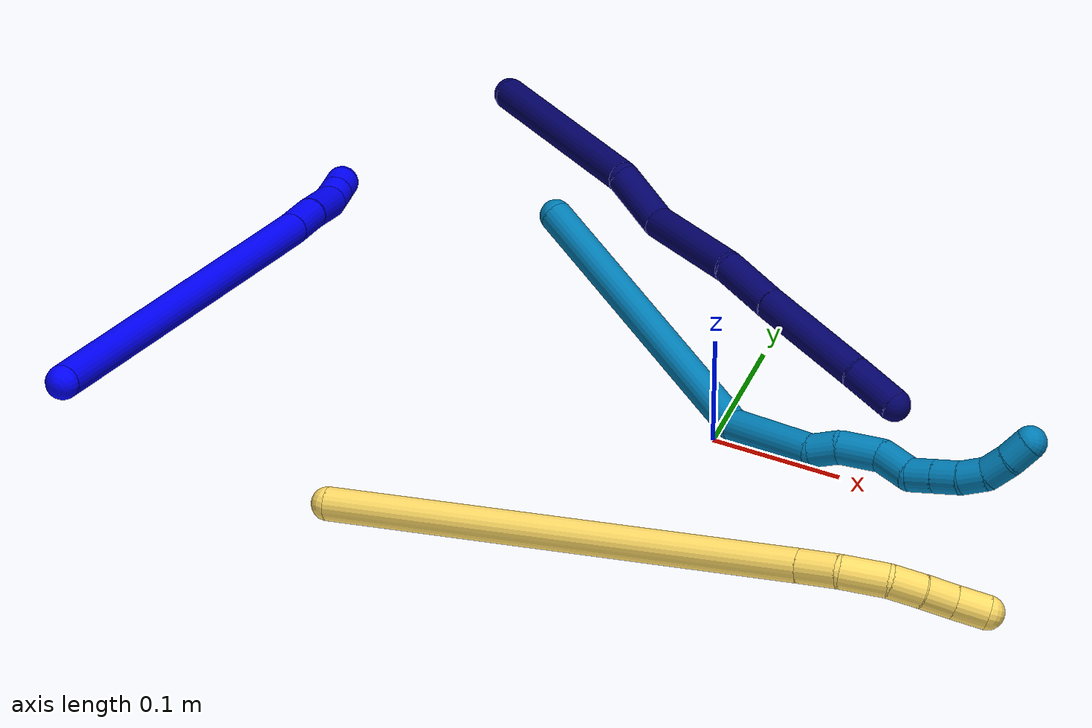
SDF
<sdf version="1.7">
 <world name="default">
  <model name="1">
   <static>0</static>
   <link name="1">
    <collision name="collision-cylinder-e_1_1_4">
     <pose>-0.01141 0.01002 -0.184015 -3.08719 -0.061836 1.69867</pose>
     <geometry><cylinder><radius>0.0125</radius><length>0.36928</length></cylinder></geometry>
     <surface>
      <friction><ode><mu>1.16</mu><mu2>1.16</mu2><slip1>0</slip1><slip2>0</slip2></ode></friction>
      <contact><ode><kp>1e+06</kp><kd>1</kd><max_vel>0</max_vel><min_depth>0.001</min_depth></ode></contact>
     </surface>
    </collision>
    <visual name="visual-cylinder-e_1_1_4">
     <pose>-0.01141 0.01002 -0.184015 -3.08719 -0.061836 1.69867</pose>
     <geometry><cylinder><radius>0.0125</radius><length>0.36928</length></cylinder></geometry>
     <material><ambient>0 0 1 1</ambient></material>
    </visual>
    <collision name="collision-cylinder-e_2_4_5">
     <pose>-0.022898 0.020659 -0.38692 -3.10885 -0.004103 0.249349</pose>
     <geometry><cylinder><radius>0.0125</radius><length>0.037802</length></cylinder></geometry>
     <surface>
      <friction><ode><mu>1.16</mu><mu2>1.16</mu2><slip1>0</slip1><slip2>0</slip2></ode></friction>
      <contact><ode><kp>1e+06</kp><kd>1</kd><max_vel>0</max_vel><min_depth>0.001</min_depth></ode></contact>
     </surface>
    </collision>
    <visual name="visual-cylinder-e_2_4_5">
     <pose>-0.022898 0.020659 -0.38692 -3.10885 -0.004103 0.249349</pose>
     <geometry><cylinder><radius>0.0125</radius><length>0.037802</length></cylinder></geometry>
     <material><ambient>0 0 1 1</ambient></material>
    </visual>
    <collision name="collision-cylinder-e_3_5_6">
     <pose>-0.020121 0.025031 -0.43169 -2.99754 0.108734 -1.29242</pose>
     <geometry><cylinder><radius>0.0125</radius><length>0.052611</length></cylinder></geometry>
     <surface>
      <friction><ode><mu>1.16</mu><mu2>1.16</mu2><slip1>0</slip1><slip2>0</slip2></ode></friction>
      <contact><ode><kp>1e+06</kp><kd>1</kd><max_vel>0</max_vel><min_depth>0.001</min_depth></ode></contact>
     </surface>
    </collision>
    <visual name="visual-cylinder-e_3_5_6">
     <pose>-0.020121 0.025031 -0.43169 -2.99754 0.108734 -1.29242</pose>
     <geometry><cylinder><radius>0.0125</radius><length>0.052611</length></cylinder></geometry>
     <material><ambient>0 0 1 1</ambient></material>
    </visual>
    <collision name="collision-cylinder-e_4_6_7">
     <pose>-0.016154 0.028257 -0.467604 3.08901 0.110196 2.25176</pose>
     <geometry><cylinder><radius>0.0125</radius><length>0.02022</length></cylinder></geometry>
     <surface>
      <friction><ode><mu>1.16</mu><mu2>1.16</mu2><slip1>0</slip1><slip2>0</slip2></ode></friction>
      <contact><ode><kp>1e+06</kp><kd>1</kd><max_vel>0</max_vel><min_depth>0.001</min_depth></ode></contact>
     </surface>
    </collision>
    <visual name="visual-cylinder-e_4_6_7">
     <pose>-0.016154 0.028257 -0.467604 3.08901 0.110196 2.25176</pose>
     <geometry><cylinder><radius>0.0125</radius><length>0.02022</length></cylinder></geometry>
     <material><ambient>0 0 1 1</ambient></material>
    </visual>
    <collision name="collision-cylinder-e_5_7_2">
     <pose>-0.01394 0.027205 -0.487608 3.0891 0.109984 2.25162</pose>
     <geometry><cylinder><radius>0.0125</radius><length>0.020086</length></cylinder></geometry>
     <surface>
      <friction><ode><mu>1.16</mu><mu2>1.16</mu2><slip1>0</slip1><slip2>0</slip2></ode></friction>
      <contact><ode><kp>1e+06</kp><kd>1</kd><max_vel>0</max_vel><min_depth>0.001</min_depth></ode></contact>
     </surface>
    </collision>
    <visual name="visual-cylinder-e_5_7_2">
     <pose>-0.01394 0.027205 -0.487608 3.0891 0.109984 2.25162</pose>
     <geometry><cylinder><radius>0.0125</radius><length>0.020086</length></cylinder></geometry>
     <material><ambient>0 0 1 1</ambient></material>
    </visual>
    <collision name="collision-sphere-2">
     <pose>-0.012838 0.026682 -0.497577 0 -0 0</pose>
     <geometry><sphere><radius>0.0125</radius></sphere></geometry>
     <surface>
      <friction><ode><mu>1.16</mu><mu2>1.16</mu2><slip1>0</slip1><slip2>0</slip2></ode></friction>
      <contact><ode><kp>1e+06</kp><kd>1</kd><max_vel>0</max_vel><min_depth>0.001</min_depth></ode></contact>
     </surface>
    </collision>
    <visual name="visual-sphere-2">
     <pose>-0.012838 0.026682 -0.497577 0 -0 0</pose>
     <geometry><sphere><radius>0.0125</radius></sphere></geometry>
     <material><ambient>0 0 1 1</ambient></material>
    </visual>
    <collision name="collision-sphere-7">
     <pose>-0.015043 0.027729 -0.477639 0 -0 0</pose>
     <geometry><sphere><radius>0.0125</radius></sphere></geometry>
     <surface>
      <friction><ode><mu>1.16</mu><mu2>1.16</mu2><slip1>0</slip1><slip2>0</slip2></ode></friction>
      <contact><ode><kp>1e+06</kp><kd>1</kd><max_vel>0</max_vel><min_depth>0.001</min_depth></ode></contact>
     </surface>
    </collision>
    <visual name="visual-sphere-7">
     <pose>-0.015043 0.027729 -0.477639 0 -0 0</pose>
     <geometry><sphere><radius>0.0125</radius></sphere></geometry>
     <material><ambient>0 0 1 1</ambient></material>
    </visual>
    <collision name="collision-sphere-6">
     <pose>-0.017266 0.028786 -0.457569 0 -0 0</pose>
     <geometry><sphere><radius>0.0125</radius></sphere></geometry>
     <surface>
      <friction><ode><mu>1.16</mu><mu2>1.16</mu2><slip1>0</slip1><slip2>0</slip2></ode></friction>
      <contact><ode><kp>1e+06</kp><kd>1</kd><max_vel>0</max_vel><min_depth>0.001</min_depth></ode></contact>
     </surface>
    </collision>
    <visual name="visual-sphere-6">
     <pose>-0.017266 0.028786 -0.457569 0 -0 0</pose>
     <geometry><sphere><radius>0.0125</radius></sphere></geometry>
     <material><ambient>0 0 1 1</ambient></material>
    </visual>
    <collision name="collision-sphere-5">
     <pose>-0.022976 0.021277 -0.405811 0 -0 0</pose>
     <geometry><sphere><radius>0.0125</radius></sphere></geometry>
     <surface>
      <friction><ode><mu>1.16</mu><mu2>1.16</mu2><slip1>0</slip1><slip2>0</slip2></ode></friction>
      <contact><ode><kp>1e+06</kp><kd>1</kd><max_vel>0</max_vel><min_depth>0.001</min_depth></ode></contact>
     </surface>
    </collision>
    <visual name="visual-sphere-5">
     <pose>-0.022976 0.021277 -0.405811 0 -0 0</pose>
     <geometry><sphere><radius>0.0125</radius></sphere></geometry>
     <material><ambient>0 0 1 1</ambient></material>
    </visual>
    <collision name="collision-sphere-1">
     <geometry><sphere><radius>0.0125</radius></sphere></geometry>
     <surface>
      <friction><ode><mu>1.16</mu><mu2>1.16</mu2><slip1>0</slip1><slip2>0</slip2></ode></friction>
      <contact><ode><kp>1e+06</kp><kd>1</kd><max_vel>0</max_vel><min_depth>0.001</min_depth></ode></contact>
     </surface>
    </collision>
    <visual name="visual-sphere-1">
     <geometry><sphere><radius>0.0125</radius></sphere></geometry>
     <material><ambient>0 0 1 1</ambient></material>
    </visual>
    <collision name="collision-sphere-4">
     <pose>-0.02282 0.02004 -0.368029 0 -0 0</pose>
     <geometry><sphere><radius>0.0125</radius></sphere></geometry>
     <surface>
      <friction><ode><mu>1.16</mu><mu2>1.16</mu2><slip1>0</slip1><slip2>0</slip2></ode></friction>
      <contact><ode><kp>1e+06</kp><kd>1</kd><max_vel>0</max_vel><min_depth>0.001</min_depth></ode></contact>
     </surface>
    </collision>
    <visual name="visual-sphere-4">
     <pose>-0.02282 0.02004 -0.368029 0 -0 0</pose>
     <geometry><sphere><radius>0.0125</radius></sphere></geometry>
     <material><ambient>0 0 1 1</ambient></material>
    </visual>
    <inertial>
     <pose>-0.013489 0.013832 -0.249081 0 -0 0</pose>
     <mass>0.5</mass>
     <inertia>
      <ixx>0.00363</ixx>
      <ixy>0</ixy>
      <ixz>0</ixz>
      <iyy>0.004704</iyy>
      <iyz>0</iyz>
      <izz>-1.1e-05</izz>
     </inertia>
    </inertial>
   </link>
   <pose>-0.348567 -0.34777 0.232292 -1.19494 0.306892 -2.96818</pose>
  </model>
  <model name="5">
   <static>0</static>
   <link name="5">
    <collision name="collision-cylinder-e_1_1_4">
     <pose>0.13888 0.110654 0.027861 -1.32414 0.883008 -0.705895</pose>
     <geometry><cylinder><radius>0.0125</radius><length>0.35949</length></cylinder></geometry>
     <surface>
      <friction><ode><mu>1.16</mu><mu2>1.16</mu2><slip1>0</slip1><slip2>0</slip2></ode></friction>
      <contact><ode><kp>1e+06</kp><kd>1</kd><max_vel>0</max_vel><min_depth>0.001</min_depth></ode></contact>
     </surface>
    </collision>
    <visual name="visual-cylinder-e_1_1_4">
     <pose>0.13888 0.110654 0.027861 -1.32414 0.883008 -0.705895</pose>
     <geometry><cylinder><radius>0.0125</radius><length>0.35949</length></cylinder></geometry>
     <material><ambient>1 0.858824 0.4 1</ambient></material>
    </visual>
    <collision name="collision-cylinder-e_2_4_5">
     <pose>0.289494 0.230346 0.057896 -1.33472 0.900779 -0.728055</pose>
     <geometry><cylinder><radius>0.0125</radius><length>0.02994</length></cylinder></geometry>
     <surface>
      <friction><ode><mu>1.16</mu><mu2>1.16</mu2><slip1>0</slip1><slip2>0</slip2></ode></friction>
      <contact><ode><kp>1e+06</kp><kd>1</kd><max_vel>0</max_vel><min_depth>0.001</min_depth></ode></contact>
     </surface>
    </collision>
    <visual name="visual-cylinder-e_2_4_5">
     <pose>0.289494 0.230346 0.057896 -1.33472 0.900779 -0.728055</pose>
     <geometry><cylinder><radius>0.0125</radius><length>0.02994</length></cylinder></geometry>
     <material><ambient>1 0.858824 0.4 1</ambient></material>
    </visual>
    <collision name="collision-cylinder-e_3_5_6">
     <pose>0.31136 0.253635 0.0618 -1.45 0.614652 -0.548213</pose>
     <geometry><cylinder><radius>0.0125</radius><length>0.035141</length></cylinder></geometry>
     <surface>
      <friction><ode><mu>1.16</mu><mu2>1.16</mu2><slip1>0</slip1><slip2>0</slip2></ode></friction>
      <contact><ode><kp>1e+06</kp><kd>1</kd><max_vel>0</max_vel><min_depth>0.001</min_depth></ode></contact>
     </surface>
    </collision>
    <visual name="visual-cylinder-e_3_5_6">
     <pose>0.31136 0.253635 0.0618 -1.45 0.614652 -0.548213</pose>
     <geometry><cylinder><radius>0.0125</radius><length>0.035141</length></cylinder></geometry>
     <material><ambient>1 0.858824 0.4 1</ambient></material>
    </visual>
    <collision name="collision-cylinder-e_4_6_7">
     <pose>0.325989 0.279838 0.063253 -1.59394 0.359698 -0.367934</pose>
     <geometry><cylinder><radius>0.0125</radius><length>0.025546</length></cylinder></geometry>
     <surface>
      <friction><ode><mu>1.16</mu><mu2>1.16</mu2><slip1>0</slip1><slip2>0</slip2></ode></friction>
      <contact><ode><kp>1e+06</kp><kd>1</kd><max_vel>0</max_vel><min_depth>0.001</min_depth></ode></contact>
     </surface>
    </collision>
    <visual name="visual-cylinder-e_4_6_7">
     <pose>0.325989 0.279838 0.063253 -1.59394 0.359698 -0.367934</pose>
     <geometry><cylinder><radius>0.0125</radius><length>0.025546</length></cylinder></geometry>
     <material><ambient>1 0.858824 0.4 1</ambient></material>
    </visual>
    <collision name="collision-cylinder-e_5_7_8">
     <pose>0.333665 0.303575 0.062404 -1.61935 0.263262 -0.276202</pose>
     <geometry><cylinder><radius>0.0125</radius><length>0.024439</length></cylinder></geometry>
     <surface>
      <friction><ode><mu>1.16</mu><mu2>1.16</mu2><slip1>0</slip1><slip2>0</slip2></ode></friction>
      <contact><ode><kp>1e+06</kp><kd>1</kd><max_vel>0</max_vel><min_depth>0.001</min_depth></ode></contact>
     </surface>
    </collision>
    <visual name="visual-cylinder-e_5_7_8">
     <pose>0.333665 0.303575 0.062404 -1.61935 0.263262 -0.276202</pose>
     <geometry><cylinder><radius>0.0125</radius><length>0.024439</length></cylinder></geometry>
     <material><ambient>1 0.858824 0.4 1</ambient></material>
    </visual>
    <collision name="collision-cylinder-e_6_8_2">
     <pose>0.342456 0.326773 0.061524 -1.59769 0.456807 -0.468814</pose>
     <geometry><cylinder><radius>0.0125</radius><length>0.025444</length></cylinder></geometry>
     <surface>
      <friction><ode><mu>1.16</mu><mu2>1.16</mu2><slip1>0</slip1><slip2>0</slip2></ode></friction>
      <contact><ode><kp>1e+06</kp><kd>1</kd><max_vel>0</max_vel><min_depth>0.001</min_depth></ode></contact>
     </surface>
    </collision>
    <visual name="visual-cylinder-e_6_8_2">
     <pose>0.342456 0.326773 0.061524 -1.59769 0.456807 -0.468814</pose>
     <geometry><cylinder><radius>0.0125</radius><length>0.025444</length></cylinder></geometry>
     <material><ambient>1 0.858824 0.4 1</ambient></material>
    </visual>
    <collision name="collision-sphere-2">
     <pose>0.348068 0.338186 0.061217 0 -0 0</pose>
     <geometry><sphere><radius>0.0125</radius></sphere></geometry>
     <surface>
      <friction><ode><mu>1.16</mu><mu2>1.16</mu2><slip1>0</slip1><slip2>0</slip2></ode></friction>
      <contact><ode><kp>1e+06</kp><kd>1</kd><max_vel>0</max_vel><min_depth>0.001</min_depth></ode></contact>
     </surface>
    </collision>
    <visual name="visual-sphere-2">
     <pose>0.348068 0.338186 0.061217 0 -0 0</pose>
     <geometry><sphere><radius>0.0125</radius></sphere></geometry>
     <material><ambient>1 0.858824 0.4 1</ambient></material>
    </visual>
    <collision name="collision-sphere-4">
     <pose>0.277761 0.221308 0.055721 0 -0 0</pose>
     <geometry><sphere><radius>0.0125</radius></sphere></geometry>
     <surface>
      <friction><ode><mu>1.16</mu><mu2>1.16</mu2><slip1>0</slip1><slip2>0</slip2></ode></friction>
      <contact><ode><kp>1e+06</kp><kd>1</kd><max_vel>0</max_vel><min_depth>0.001</min_depth></ode></contact>
     </surface>
    </collision>
    <visual name="visual-sphere-4">
     <pose>0.277761 0.221308 0.055721 0 -0 0</pose>
     <geometry><sphere><radius>0.0125</radius></sphere></geometry>
     <material><ambient>1 0.858824 0.4 1</ambient></material>
    </visual>
    <collision name="collision-sphere-1">
     <geometry><sphere><radius>0.0125</radius></sphere></geometry>
     <surface>
      <friction><ode><mu>1.16</mu><mu2>1.16</mu2><slip1>0</slip1><slip2>0</slip2></ode></friction>
      <contact><ode><kp>1e+06</kp><kd>1</kd><max_vel>0</max_vel><min_depth>0.001</min_depth></ode></contact>
     </surface>
    </collision>
    <visual name="visual-sphere-1">
     <geometry><sphere><radius>0.0125</radius></sphere></geometry>
     <material><ambient>1 0.858824 0.4 1</ambient></material>
    </visual>
    <collision name="collision-sphere-8">
     <pose>0.336845 0.315359 0.061831 0 -0 0</pose>
     <geometry><sphere><radius>0.0125</radius></sphere></geometry>
     <surface>
      <friction><ode><mu>1.16</mu><mu2>1.16</mu2><slip1>0</slip1><slip2>0</slip2></ode></friction>
      <contact><ode><kp>1e+06</kp><kd>1</kd><max_vel>0</max_vel><min_depth>0.001</min_depth></ode></contact>
     </surface>
    </collision>
    <visual name="visual-sphere-8">
     <pose>0.336845 0.315359 0.061831 0 -0 0</pose>
     <geometry><sphere><radius>0.0125</radius></sphere></geometry>
     <material><ambient>1 0.858824 0.4 1</ambient></material>
    </visual>
    <collision name="collision-sphere-5">
     <pose>0.301228 0.239385 0.06007 0 -0 0</pose>
     <geometry><sphere><radius>0.0125</radius></sphere></geometry>
     <surface>
      <friction><ode><mu>1.16</mu><mu2>1.16</mu2><slip1>0</slip1><slip2>0</slip2></ode></friction>
      <contact><ode><kp>1e+06</kp><kd>1</kd><max_vel>0</max_vel><min_depth>0.001</min_depth></ode></contact>
     </surface>
    </collision>
    <visual name="visual-sphere-5">
     <pose>0.301228 0.239385 0.06007 0 -0 0</pose>
     <geometry><sphere><radius>0.0125</radius></sphere></geometry>
     <material><ambient>1 0.858824 0.4 1</ambient></material>
    </visual>
    <collision name="collision-sphere-6">
     <pose>0.321493 0.267885 0.06353 0 -0 0</pose>
     <geometry><sphere><radius>0.0125</radius></sphere></geometry>
     <surface>
      <friction><ode><mu>1.16</mu><mu2>1.16</mu2><slip1>0</slip1><slip2>0</slip2></ode></friction>
      <contact><ode><kp>1e+06</kp><kd>1</kd><max_vel>0</max_vel><min_depth>0.001</min_depth></ode></contact>
     </surface>
    </collision>
    <visual name="visual-sphere-6">
     <pose>0.321493 0.267885 0.06353 0 -0 0</pose>
     <geometry><sphere><radius>0.0125</radius></sphere></geometry>
     <material><ambient>1 0.858824 0.4 1</ambient></material>
    </visual>
    <collision name="collision-sphere-7">
     <pose>0.330485 0.29179 0.062976 0 -0 0</pose>
     <geometry><sphere><radius>0.0125</radius></sphere></geometry>
     <surface>
      <friction><ode><mu>1.16</mu><mu2>1.16</mu2><slip1>0</slip1><slip2>0</slip2></ode></friction>
      <contact><ode><kp>1e+06</kp><kd>1</kd><max_vel>0</max_vel><min_depth>0.001</min_depth></ode></contact>
     </surface>
    </collision>
    <visual name="visual-sphere-7">
     <pose>0.330485 0.29179 0.062976 0 -0 0</pose>
     <geometry><sphere><radius>0.0125</radius></sphere></geometry>
     <material><ambient>1 0.858824 0.4 1</ambient></material>
    </visual>
    <inertial>
     <pose>0.189461 0.156941 0.037254 0 -0 0</pose>
     <mass>0.5</mass>
     <inertia>
      <ixx>0.000309</ixx>
      <ixy>0</ixy>
      <ixz>0</ixz>
      <iyy>0.001036</iyy>
      <iyz>0</iyz>
      <izz>-0.00541</izz>
     </inertia>
    </inertial>
   </link>
   <pose>-0.215235 -0.210737 0.041048 -0.644907 -0.498867 -0.562057</pose>
  </model>
  <model name="7">
   <static>0</static>
   <link name="7">
    <collision name="collision-cylinder-e_1_1_4">
     <pose>0.025119 -0.023645 -0.080065 2.85443 0.292264 1.58866</pose>
     <geometry><cylinder><radius>0.0125</radius><length>0.174362</length></cylinder></geometry>
     <surface>
      <friction><ode><mu>1.16</mu><mu2>1.16</mu2><slip1>0</slip1><slip2>0</slip2></ode></friction>
      <contact><ode><kp>1e+06</kp><kd>1</kd><max_vel>0</max_vel><min_depth>0.001</min_depth></ode></contact>
     </surface>
    </collision>
    <visual name="visual-cylinder-e_1_1_4">
     <pose>0.025119 -0.023645 -0.080065 2.85443 0.292264 1.58866</pose>
     <geometry><cylinder><radius>0.0125</radius><length>0.174362</length></cylinder></geometry>
     <material><ambient>0.003922 0 0.403922 1</ambient></material>
    </visual>
    <collision name="collision-cylinder-e_2_4_5">
     <pose>0.064005 -0.044599 -0.179605 -3.00424 0.610926 -2.71206</pose>
     <geometry><cylinder><radius>0.0125</radius><length>0.048003</length></cylinder></geometry>
     <surface>
      <friction><ode><mu>1.16</mu><mu2>1.16</mu2><slip1>0</slip1><slip2>0</slip2></ode></friction>
      <contact><ode><kp>1e+06</kp><kd>1</kd><max_vel>0</max_vel><min_depth>0.001</min_depth></ode></contact>
     </surface>
    </collision>
    <visual name="visual-cylinder-e_2_4_5">
     <pose>0.064005 -0.044599 -0.179605 -3.00424 0.610926 -2.71206</pose>
     <geometry><cylinder><radius>0.0125</radius><length>0.048003</length></cylinder></geometry>
     <material><ambient>0.003922 0 0.403922 1</ambient></material>
    </visual>
    <collision name="collision-cylinder-e_3_5_6">
     <pose>0.092471 -0.056694 -0.242565 2.81381 0.309714 1.51315</pose>
     <geometry><cylinder><radius>0.0125</radius><length>0.096449</length></cylinder></geometry>
     <surface>
      <friction><ode><mu>1.16</mu><mu2>1.16</mu2><slip1>0</slip1><slip2>0</slip2></ode></friction>
      <contact><ode><kp>1e+06</kp><kd>1</kd><max_vel>0</max_vel><min_depth>0.001</min_depth></ode></contact>
     </surface>
    </collision>
    <visual name="visual-cylinder-e_3_5_6">
     <pose>0.092471 -0.056694 -0.242565 2.81381 0.309714 1.51315</pose>
     <geometry><cylinder><radius>0.0125</radius><length>0.096449</length></cylinder></geometry>
     <material><ambient>0.003922 0 0.403922 1</ambient></material>
    </visual>
    <collision name="collision-cylinder-e_4_6_7">
     <pose>0.119678 -0.073975 -0.30657 3.02063 0.54416 2.71414</pose>
     <geometry><cylinder><radius>0.0125</radius><length>0.048322</length></cylinder></geometry>
     <surface>
      <friction><ode><mu>1.16</mu><mu2>1.16</mu2><slip1>0</slip1><slip2>0</slip2></ode></friction>
      <contact><ode><kp>1e+06</kp><kd>1</kd><max_vel>0</max_vel><min_depth>0.001</min_depth></ode></contact>
     </surface>
    </collision>
    <visual name="visual-cylinder-e_4_6_7">
     <pose>0.119678 -0.073975 -0.30657 3.02063 0.54416 2.71414</pose>
     <geometry><cylinder><radius>0.0125</radius><length>0.048322</length></cylinder></geometry>
     <material><ambient>0.003922 0 0.403922 1</ambient></material>
    </visual>
    <collision name="collision-cylinder-e_5_7_8">
     <pose>0.158421 -0.081542 -0.364838 3.00801 0.603181 2.71799</pose>
     <geometry><cylinder><radius>0.0125</radius><length>0.092497</length></cylinder></geometry>
     <surface>
      <friction><ode><mu>1.16</mu><mu2>1.16</mu2><slip1>0</slip1><slip2>0</slip2></ode></friction>
      <contact><ode><kp>1e+06</kp><kd>1</kd><max_vel>0</max_vel><min_depth>0.001</min_depth></ode></contact>
     </surface>
    </collision>
    <visual name="visual-cylinder-e_5_7_8">
     <pose>0.158421 -0.081542 -0.364838 3.00801 0.603181 2.71799</pose>
     <geometry><cylinder><radius>0.0125</radius><length>0.092497</length></cylinder></geometry>
     <material><ambient>0.003922 0 0.403922 1</ambient></material>
    </visual>
    <collision name="collision-cylinder-e_6_8_2">
     <pose>0.197966 -0.087416 -0.417739 3.08878 0.720041 3.0015</pose>
     <geometry><cylinder><radius>0.0125</radius><length>0.040367</length></cylinder></geometry>
     <surface>
      <friction><ode><mu>1.16</mu><mu2>1.16</mu2><slip1>0</slip1><slip2>0</slip2></ode></friction>
      <contact><ode><kp>1e+06</kp><kd>1</kd><max_vel>0</max_vel><min_depth>0.001</min_depth></ode></contact>
     </surface>
    </collision>
    <visual name="visual-cylinder-e_6_8_2">
     <pose>0.197966 -0.087416 -0.417739 3.08878 0.720041 3.0015</pose>
     <geometry><cylinder><radius>0.0125</radius><length>0.040367</length></cylinder></geometry>
     <material><ambient>0.003922 0 0.403922 1</ambient></material>
    </visual>
    <collision name="collision-sphere-2">
     <pose>0.211275 -0.088217 -0.432891 0 -0 0</pose>
     <geometry><sphere><radius>0.0125</radius></sphere></geometry>
     <surface>
      <friction><ode><mu>1.16</mu><mu2>1.16</mu2><slip1>0</slip1><slip2>0</slip2></ode></friction>
      <contact><ode><kp>1e+06</kp><kd>1</kd><max_vel>0</max_vel><min_depth>0.001</min_depth></ode></contact>
     </surface>
    </collision>
    <visual name="visual-sphere-2">
     <pose>0.211275 -0.088217 -0.432891 0 -0 0</pose>
     <geometry><sphere><radius>0.0125</radius></sphere></geometry>
     <material><ambient>0.003922 0 0.403922 1</ambient></material>
    </visual>
    <collision name="collision-sphere-4">
     <pose>0.050237 -0.04729 -0.16013 0 -0 0</pose>
     <geometry><sphere><radius>0.0125</radius></sphere></geometry>
     <surface>
      <friction><ode><mu>1.16</mu><mu2>1.16</mu2><slip1>0</slip1><slip2>0</slip2></ode></friction>
      <contact><ode><kp>1e+06</kp><kd>1</kd><max_vel>0</max_vel><min_depth>0.001</min_depth></ode></contact>
     </surface>
    </collision>
    <visual name="visual-sphere-4">
     <pose>0.050237 -0.04729 -0.16013 0 -0 0</pose>
     <geometry><sphere><radius>0.0125</radius></sphere></geometry>
     <material><ambient>0.003922 0 0.403922 1</ambient></material>
    </visual>
    <collision name="collision-sphere-1">
     <geometry><sphere><radius>0.0125</radius></sphere></geometry>
     <surface>
      <friction><ode><mu>1.16</mu><mu2>1.16</mu2><slip1>0</slip1><slip2>0</slip2></ode></friction>
      <contact><ode><kp>1e+06</kp><kd>1</kd><max_vel>0</max_vel><min_depth>0.001</min_depth></ode></contact>
     </surface>
    </collision>
    <visual name="visual-sphere-1">
     <geometry><sphere><radius>0.0125</radius></sphere></geometry>
     <material><ambient>0.003922 0 0.403922 1</ambient></material>
    </visual>
    <collision name="collision-sphere-8">
     <pose>0.184656 -0.086615 -0.402586 0 -0 0</pose>
     <geometry><sphere><radius>0.0125</radius></sphere></geometry>
     <surface>
      <friction><ode><mu>1.16</mu><mu2>1.16</mu2><slip1>0</slip1><slip2>0</slip2></ode></friction>
      <contact><ode><kp>1e+06</kp><kd>1</kd><max_vel>0</max_vel><min_depth>0.001</min_depth></ode></contact>
     </surface>
    </collision>
    <visual name="visual-sphere-8">
     <pose>0.184656 -0.086615 -0.402586 0 -0 0</pose>
     <geometry><sphere><radius>0.0125</radius></sphere></geometry>
     <material><ambient>0.003922 0 0.403922 1</ambient></material>
    </visual>
    <collision name="collision-sphere-5">
     <pose>0.077773 -0.041907 -0.19908 0 -0 0</pose>
     <geometry><sphere><radius>0.0125</radius></sphere></geometry>
     <surface>
      <friction><ode><mu>1.16</mu><mu2>1.16</mu2><slip1>0</slip1><slip2>0</slip2></ode></friction>
      <contact><ode><kp>1e+06</kp><kd>1</kd><max_vel>0</max_vel><min_depth>0.001</min_depth></ode></contact>
     </surface>
    </collision>
    <visual name="visual-sphere-5">
     <pose>0.077773 -0.041907 -0.19908 0 -0 0</pose>
     <geometry><sphere><radius>0.0125</radius></sphere></geometry>
     <material><ambient>0.003922 0 0.403922 1</ambient></material>
    </visual>
    <collision name="collision-sphere-6">
     <pose>0.107169 -0.071481 -0.286049 0 -0 0</pose>
     <geometry><sphere><radius>0.0125</radius></sphere></geometry>
     <surface>
      <friction><ode><mu>1.16</mu><mu2>1.16</mu2><slip1>0</slip1><slip2>0</slip2></ode></friction>
      <contact><ode><kp>1e+06</kp><kd>1</kd><max_vel>0</max_vel><min_depth>0.001</min_depth></ode></contact>
     </surface>
    </collision>
    <visual name="visual-sphere-6">
     <pose>0.107169 -0.071481 -0.286049 0 -0 0</pose>
     <geometry><sphere><radius>0.0125</radius></sphere></geometry>
     <material><ambient>0.003922 0 0.403922 1</ambient></material>
    </visual>
    <collision name="collision-sphere-7">
     <pose>0.132186 -0.076469 -0.32709 0 -0 0</pose>
     <geometry><sphere><radius>0.0125</radius></sphere></geometry>
     <surface>
      <friction><ode><mu>1.16</mu><mu2>1.16</mu2><slip1>0</slip1><slip2>0</slip2></ode></friction>
      <contact><ode><kp>1e+06</kp><kd>1</kd><max_vel>0</max_vel><min_depth>0.001</min_depth></ode></contact>
     </surface>
    </collision>
    <visual name="visual-sphere-7">
     <pose>0.132186 -0.076469 -0.32709 0 -0 0</pose>
     <geometry><sphere><radius>0.0125</radius></sphere></geometry>
     <material><ambient>0.003922 0 0.403922 1</ambient></material>
    </visual>
    <inertial>
     <pose>0.089598 -0.052755 -0.222801 0 -0 0</pose>
     <mass>0.5</mass>
     <inertia><ixx>0.000467</ixx><ixy>0</ixy><ixz>0</ixz><iyy>0.000662</iyy><iyz>0</iyz><izz>-9e-05</izz></inertia>
    </inertial>
   </link>
   <pose>-0.288768 0.284549 0.011494 -1.75112 0.492901 0.455397</pose>
  </model>
  <model name="9">
   <static>0</static>
   <link name="9">
    <collision name="collision-cylinder-e_1_1_4">
     <pose>0.119786 0.009916 0.016324 -0.545891 1.41268 -0.468882</pose>
     <geometry><cylinder><radius>0.0125</radius><length>0.242598</length></cylinder></geometry>
     <surface>
      <friction><ode><mu>1.16</mu><mu2>1.16</mu2><slip1>0</slip1><slip2>0</slip2></ode></friction>
      <contact><ode><kp>1e+06</kp><kd>1</kd><max_vel>0</max_vel><min_depth>0.001</min_depth></ode></contact>
     </surface>
    </collision>
    <visual name="visual-cylinder-e_1_1_4">
     <pose>0.119786 0.009916 0.016324 -0.545891 1.41268 -0.468882</pose>
     <geometry><cylinder><radius>0.0125</radius><length>0.242598</length></cylinder></geometry>
     <material><ambient>0 0.490196 0.709804 1</ambient></material>
    </visual>
    <collision name="collision-cylinder-e_2_4_5">
     <pose>0.270017 0.038645 0.038162 -1.28565 0.998729 -0.775679</pose>
     <geometry><cylinder><radius>0.0125</radius><length>0.072423</length></cylinder></geometry>
     <surface>
      <friction><ode><mu>1.16</mu><mu2>1.16</mu2><slip1>0</slip1><slip2>0</slip2></ode></friction>
      <contact><ode><kp>1e+06</kp><kd>1</kd><max_vel>0</max_vel><min_depth>0.001</min_depth></ode></contact>
     </surface>
    </collision>
    <visual name="visual-cylinder-e_2_4_5">
     <pose>0.270017 0.038645 0.038162 -1.28565 0.998729 -0.775679</pose>
     <geometry><cylinder><radius>0.0125</radius><length>0.072423</length></cylinder></geometry>
     <material><ambient>0 0.490196 0.709804 1</ambient></material>
    </visual>
    <collision name="collision-cylinder-e_3_5_6">
     <pose>0.306641 0.066589 0.043224 -1.62039 0.594149 -0.6225</pose>
     <geometry><cylinder><radius>0.0125</radius><length>0.022068</length></cylinder></geometry>
     <surface>
      <friction><ode><mu>1.16</mu><mu2>1.16</mu2><slip1>0</slip1><slip2>0</slip2></ode></friction>
      <contact><ode><kp>1e+06</kp><kd>1</kd><max_vel>0</max_vel><min_depth>0.001</min_depth></ode></contact>
     </surface>
    </collision>
    <visual name="visual-cylinder-e_3_5_6">
     <pose>0.306641 0.066589 0.043224 -1.62039 0.594149 -0.6225</pose>
     <geometry><cylinder><radius>0.0125</radius><length>0.022068</length></cylinder></geometry>
     <material><ambient>0 0.490196 0.709804 1</ambient></material>
    </visual>
    <collision name="collision-cylinder-e_4_6_7">
     <pose>0.325631 0.085974 0.040683 -1.77164 0.886035 -1.05236</pose>
     <geometry><cylinder><radius>0.0125</radius><length>0.033086</length></cylinder></geometry>
     <surface>
      <friction><ode><mu>1.16</mu><mu2>1.16</mu2><slip1>0</slip1><slip2>0</slip2></ode></friction>
      <contact><ode><kp>1e+06</kp><kd>1</kd><max_vel>0</max_vel><min_depth>0.001</min_depth></ode></contact>
     </surface>
    </collision>
    <visual name="visual-cylinder-e_4_6_7">
     <pose>0.325631 0.085974 0.040683 -1.77164 0.886035 -1.05236</pose>
     <geometry><cylinder><radius>0.0125</radius><length>0.033086</length></cylinder></geometry>
     <material><ambient>0 0.490196 0.709804 1</ambient></material>
    </visual>
    <collision name="collision-cylinder-e_5_7_8">
     <pose>0.352217 0.100683 0.041184 -1.04459 1.2127 -0.759614</pose>
     <geometry><cylinder><radius>0.0125</radius><length>0.029411</length></cylinder></geometry>
     <surface>
      <friction><ode><mu>1.16</mu><mu2>1.16</mu2><slip1>0</slip1><slip2>0</slip2></ode></friction>
      <contact><ode><kp>1e+06</kp><kd>1</kd><max_vel>0</max_vel><min_depth>0.001</min_depth></ode></contact>
     </surface>
    </collision>
    <visual name="visual-cylinder-e_5_7_8">
     <pose>0.352217 0.100683 0.041184 -1.04459 1.2127 -0.759614</pose>
     <geometry><cylinder><radius>0.0125</radius><length>0.029411</length></cylinder></geometry>
     <material><ambient>0 0.490196 0.709804 1</ambient></material>
    </visual>
    <collision name="collision-cylinder-e_6_8_9">
     <pose>0.373086 0.112263 0.044009 -1.53774 0.783236 -0.760178</pose>
     <geometry><cylinder><radius>0.0125</radius><length>0.020115</length></cylinder></geometry>
     <surface>
      <friction><ode><mu>1.16</mu><mu2>1.16</mu2><slip1>0</slip1><slip2>0</slip2></ode></friction>
      <contact><ode><kp>1e+06</kp><kd>1</kd><max_vel>0</max_vel><min_depth>0.001</min_depth></ode></contact>
     </surface>
    </collision>
    <visual name="visual-cylinder-e_6_8_9">
     <pose>0.373086 0.112263 0.044009 -1.53774 0.783236 -0.760178</pose>
     <geometry><cylinder><radius>0.0125</radius><length>0.020115</length></cylinder></geometry>
     <material><ambient>0 0.490196 0.709804 1</ambient></material>
    </visual>
    <collision name="collision-cylinder-e_7_9_10">
     <pose>0.387281 0.126504 0.044464 -1.5399 0.783817 -0.762237</pose>
     <geometry><cylinder><radius>0.0125</radius><length>0.02011</length></cylinder></geometry>
     <surface>
      <friction><ode><mu>1.16</mu><mu2>1.16</mu2><slip1>0</slip1><slip2>0</slip2></ode></friction>
      <contact><ode><kp>1e+06</kp><kd>1</kd><max_vel>0</max_vel><min_depth>0.001</min_depth></ode></contact>
     </surface>
    </collision>
    <visual name="visual-cylinder-e_7_9_10">
     <pose>0.387281 0.126504 0.044464 -1.5399 0.783817 -0.762237</pose>
     <geometry><cylinder><radius>0.0125</radius><length>0.02011</length></cylinder></geometry>
     <material><ambient>0 0.490196 0.709804 1</ambient></material>
    </visual>
    <collision name="collision-cylinder-e_8_10_11">
     <pose>0.399791 0.142112 0.044366 -1.60828 0.567096 -0.587555</pose>
     <geometry><cylinder><radius>0.0125</radius><length>0.020144</length></cylinder></geometry>
     <surface>
      <friction><ode><mu>1.16</mu><mu2>1.16</mu2><slip1>0</slip1><slip2>0</slip2></ode></friction>
      <contact><ode><kp>1e+06</kp><kd>1</kd><max_vel>0</max_vel><min_depth>0.001</min_depth></ode></contact>
     </surface>
    </collision>
    <visual name="visual-cylinder-e_8_10_11">
     <pose>0.399791 0.142112 0.044366 -1.60828 0.567096 -0.587555</pose>
     <geometry><cylinder><radius>0.0125</radius><length>0.020144</length></cylinder></geometry>
     <material><ambient>0 0.490196 0.709804 1</ambient></material>
    </visual>
    <collision name="collision-cylinder-e_9_11_12">
     <pose>0.407327 0.160303 0.045256 -1.44685 0.214089 -0.189231</pose>
     <geometry><cylinder><radius>0.0125</radius><length>0.02001</length></cylinder></geometry>
     <surface>
      <friction><ode><mu>1.16</mu><mu2>1.16</mu2><slip1>0</slip1><slip2>0</slip2></ode></friction>
      <contact><ode><kp>1e+06</kp><kd>1</kd><max_vel>0</max_vel><min_depth>0.001</min_depth></ode></contact>
     </surface>
    </collision>
    <visual name="visual-cylinder-e_9_11_12">
     <pose>0.407327 0.160303 0.045256 -1.44685 0.214089 -0.189231</pose>
     <geometry><cylinder><radius>0.0125</radius><length>0.02001</length></cylinder></geometry>
     <material><ambient>0 0.490196 0.709804 1</ambient></material>
    </visual>
    <collision name="collision-cylinder-e_10_12_2">
     <pose>0.410014 0.179983 0.047151 -1.50215 0.056105 -0.052382</pose>
     <geometry><cylinder><radius>0.0125</radius><length>0.020035</length></cylinder></geometry>
     <surface>
      <friction><ode><mu>1.16</mu><mu2>1.16</mu2><slip1>0</slip1><slip2>0</slip2></ode></friction>
      <contact><ode><kp>1e+06</kp><kd>1</kd><max_vel>0</max_vel><min_depth>0.001</min_depth></ode></contact>
     </surface>
    </collision>
    <visual name="visual-cylinder-e_10_12_2">
     <pose>0.410014 0.179983 0.047151 -1.50215 0.056105 -0.052382</pose>
     <geometry><cylinder><radius>0.0125</radius><length>0.020035</length></cylinder></geometry>
     <material><ambient>0 0.490196 0.709804 1</ambient></material>
    </visual>
    <collision name="collision-sphere-2">
     <pose>0.410576 0.189961 0.047837 0 -0 0</pose>
     <geometry><sphere><radius>0.0125</radius></sphere></geometry>
     <surface>
      <friction><ode><mu>1.16</mu><mu2>1.16</mu2><slip1>0</slip1><slip2>0</slip2></ode></friction>
      <contact><ode><kp>1e+06</kp><kd>1</kd><max_vel>0</max_vel><min_depth>0.001</min_depth></ode></contact>
     </surface>
    </collision>
    <visual name="visual-sphere-2">
     <pose>0.410576 0.189961 0.047837 0 -0 0</pose>
     <geometry><sphere><radius>0.0125</radius></sphere></geometry>
     <material><ambient>0 0.490196 0.709804 1</ambient></material>
    </visual>
    <collision name="collision-sphere-12">
     <pose>0.409452 0.170004 0.046465 0 -0 0</pose>
     <geometry><sphere><radius>0.0125</radius></sphere></geometry>
     <surface>
      <friction><ode><mu>1.16</mu><mu2>1.16</mu2><slip1>0</slip1><slip2>0</slip2></ode></friction>
      <contact><ode><kp>1e+06</kp><kd>1</kd><max_vel>0</max_vel><min_depth>0.001</min_depth></ode></contact>
     </surface>
    </collision>
    <visual name="visual-sphere-12">
     <pose>0.409452 0.170004 0.046465 0 -0 0</pose>
     <geometry><sphere><radius>0.0125</radius></sphere></geometry>
     <material><ambient>0 0.490196 0.709804 1</ambient></material>
    </visual>
    <collision name="collision-sphere-11">
     <pose>0.405201 0.150601 0.044048 0 -0 0</pose>
     <geometry><sphere><radius>0.0125</radius></sphere></geometry>
     <surface>
      <friction><ode><mu>1.16</mu><mu2>1.16</mu2><slip1>0</slip1><slip2>0</slip2></ode></friction>
      <contact><ode><kp>1e+06</kp><kd>1</kd><max_vel>0</max_vel><min_depth>0.001</min_depth></ode></contact>
     </surface>
    </collision>
    <visual name="visual-sphere-11">
     <pose>0.405201 0.150601 0.044048 0 -0 0</pose>
     <geometry><sphere><radius>0.0125</radius></sphere></geometry>
     <material><ambient>0 0.490196 0.709804 1</ambient></material>
    </visual>
    <collision name="collision-sphere-10">
     <pose>0.39438 0.133622 0.044684 0 -0 0</pose>
     <geometry><sphere><radius>0.0125</radius></sphere></geometry>
     <surface>
      <friction><ode><mu>1.16</mu><mu2>1.16</mu2><slip1>0</slip1><slip2>0</slip2></ode></friction>
      <contact><ode><kp>1e+06</kp><kd>1</kd><max_vel>0</max_vel><min_depth>0.001</min_depth></ode></contact>
     </surface>
    </collision>
    <visual name="visual-sphere-10">
     <pose>0.39438 0.133622 0.044684 0 -0 0</pose>
     <geometry><sphere><radius>0.0125</radius></sphere></geometry>
     <material><ambient>0 0.490196 0.709804 1</ambient></material>
    </visual>
    <collision name="collision-sphere-9">
     <pose>0.380183 0.119387 0.044244 0 -0 0</pose>
     <geometry><sphere><radius>0.0125</radius></sphere></geometry>
     <surface>
      <friction><ode><mu>1.16</mu><mu2>1.16</mu2><slip1>0</slip1><slip2>0</slip2></ode></friction>
      <contact><ode><kp>1e+06</kp><kd>1</kd><max_vel>0</max_vel><min_depth>0.001</min_depth></ode></contact>
     </surface>
    </collision>
    <visual name="visual-sphere-9">
     <pose>0.380183 0.119387 0.044244 0 -0 0</pose>
     <geometry><sphere><radius>0.0125</radius></sphere></geometry>
     <material><ambient>0 0.490196 0.709804 1</ambient></material>
    </visual>
    <collision name="collision-sphere-4">
     <pose>0.239571 0.019832 0.032648 0 -0 0</pose>
     <geometry><sphere><radius>0.0125</radius></sphere></geometry>
     <surface>
      <friction><ode><mu>1.16</mu><mu2>1.16</mu2><slip1>0</slip1><slip2>0</slip2></ode></friction>
      <contact><ode><kp>1e+06</kp><kd>1</kd><max_vel>0</max_vel><min_depth>0.001</min_depth></ode></contact>
     </surface>
    </collision>
    <visual name="visual-sphere-4">
     <pose>0.239571 0.019832 0.032648 0 -0 0</pose>
     <geometry><sphere><radius>0.0125</radius></sphere></geometry>
     <material><ambient>0 0.490196 0.709804 1</ambient></material>
    </visual>
    <collision name="collision-sphere-1">
     <geometry><sphere><radius>0.0125</radius></sphere></geometry>
     <surface>
      <friction><ode><mu>1.16</mu><mu2>1.16</mu2><slip1>0</slip1><slip2>0</slip2></ode></friction>
      <contact><ode><kp>1e+06</kp><kd>1</kd><max_vel>0</max_vel><min_depth>0.001</min_depth></ode></contact>
     </surface>
    </collision>
    <visual name="visual-sphere-1">
     <geometry><sphere><radius>0.0125</radius></sphere></geometry>
     <material><ambient>0 0.490196 0.709804 1</ambient></material>
    </visual>
    <collision name="collision-sphere-8">
     <pose>0.36599 0.10514 0.043773 0 -0 0</pose>
     <geometry><sphere><radius>0.0125</radius></sphere></geometry>
     <surface>
      <friction><ode><mu>1.16</mu><mu2>1.16</mu2><slip1>0</slip1><slip2>0</slip2></ode></friction>
      <contact><ode><kp>1e+06</kp><kd>1</kd><max_vel>0</max_vel><min_depth>0.001</min_depth></ode></contact>
     </surface>
    </collision>
    <visual name="visual-sphere-8">
     <pose>0.36599 0.10514 0.043773 0 -0 0</pose>
     <geometry><sphere><radius>0.0125</radius></sphere></geometry>
     <material><ambient>0 0.490196 0.709804 1</ambient></material>
    </visual>
    <collision name="collision-sphere-5">
     <pose>0.300464 0.057457 0.043677 0 -0 0</pose>
     <geometry><sphere><radius>0.0125</radius></sphere></geometry>
     <surface>
      <friction><ode><mu>1.16</mu><mu2>1.16</mu2><slip1>0</slip1><slip2>0</slip2></ode></friction>
      <contact><ode><kp>1e+06</kp><kd>1</kd><max_vel>0</max_vel><min_depth>0.001</min_depth></ode></contact>
     </surface>
    </collision>
    <visual name="visual-sphere-5">
     <pose>0.300464 0.057457 0.043677 0 -0 0</pose>
     <geometry><sphere><radius>0.0125</radius></sphere></geometry>
     <material><ambient>0 0.490196 0.709804 1</ambient></material>
    </visual>
    <collision name="collision-sphere-6">
     <pose>0.312817 0.075721 0.04277 0 -0 0</pose>
     <geometry><sphere><radius>0.0125</radius></sphere></geometry>
     <surface>
      <friction><ode><mu>1.16</mu><mu2>1.16</mu2><slip1>0</slip1><slip2>0</slip2></ode></friction>
      <contact><ode><kp>1e+06</kp><kd>1</kd><max_vel>0</max_vel><min_depth>0.001</min_depth></ode></contact>
     </surface>
    </collision>
    <visual name="visual-sphere-6">
     <pose>0.312817 0.075721 0.04277 0 -0 0</pose>
     <geometry><sphere><radius>0.0125</radius></sphere></geometry>
     <material><ambient>0 0.490196 0.709804 1</ambient></material>
    </visual>
    <collision name="collision-sphere-7">
     <pose>0.338445 0.096226 0.038596 0 -0 0</pose>
     <geometry><sphere><radius>0.0125</radius></sphere></geometry>
     <surface>
      <friction><ode><mu>1.16</mu><mu2>1.16</mu2><slip1>0</slip1><slip2>0</slip2></ode></friction>
      <contact><ode><kp>1e+06</kp><kd>1</kd><max_vel>0</max_vel><min_depth>0.001</min_depth></ode></contact>
     </surface>
    </collision>
    <visual name="visual-sphere-7">
     <pose>0.338445 0.096226 0.038596 0 -0 0</pose>
     <geometry><sphere><radius>0.0125</radius></sphere></geometry>
     <material><ambient>0 0.490196 0.709804 1</ambient></material>
    </visual>
    <inertial>
     <pose>0.232453 0.053916 0.029517 0 -0 0</pose>
     <mass>0.5</mass>
     <inertia>
      <ixx>0.000118</ixx>
      <ixy>0</ixy>
      <ixz>0</ixz>
      <iyy>0.001137</iyy>
      <iyz>0</iyz>
      <izz>-0.001347</izz>
     </inertia>
    </inertial>
   </link>
   <pose>-0.182646 0.129435 0.050259 0.710025 0.254736 -0.566026</pose>
  </model>
 </world>
</sdf>
